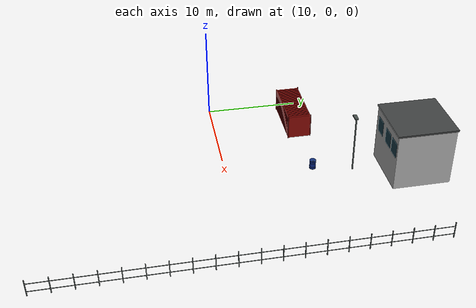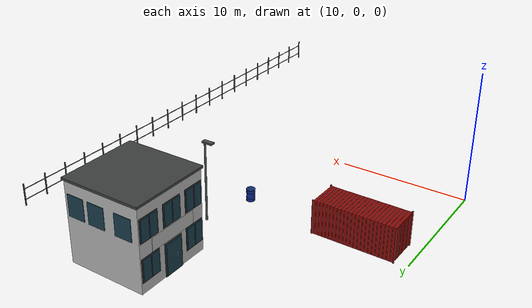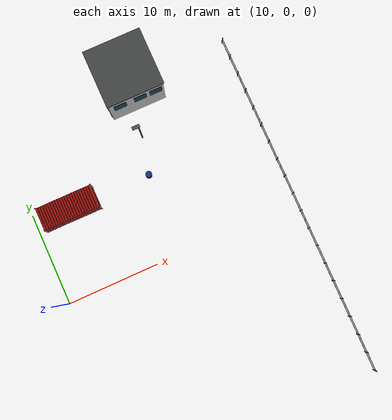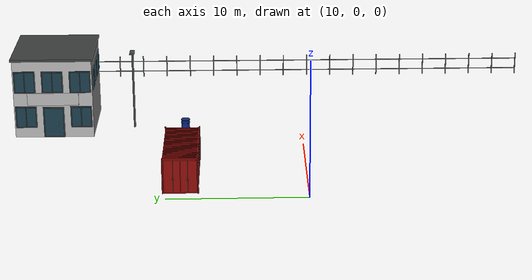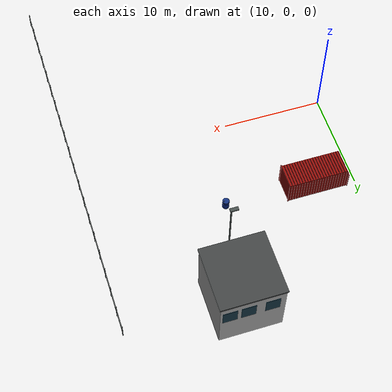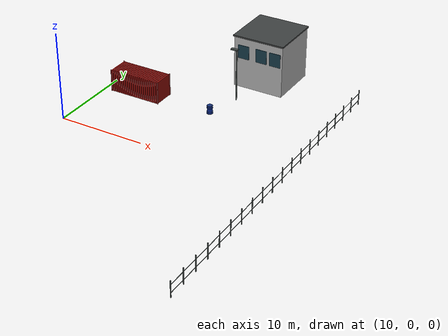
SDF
<sdf version="1.5">
 <world name="default">
  <include><uri>model://sun</uri></include>
  <model name="red_shipping_container">
   <static>true</static>
   <pose>14.0 9.0 0.003 0 0 0.0</pose>
   <link name="structure">
    <visual name="body">
     <pose>0 0 1.2955 0 0 0</pose>
     <geometry><box><size>6.058 2.438 2.591</size></box></geometry>
     <material>
      <ambient>0.56 0.045 0.028 1</ambient>
      <diffuse>0.56 0.045 0.028 1</diffuse>
      <specular>0.04 0.04 0.04 1</specular>
     </material>
    </visual>
    <collision name="body_collision">
     <pose>0 0 1.2955 0 0 0</pose>
     <geometry><box><size>6.058 2.438 2.591</size></box></geometry>
     <surface><friction><ode><mu>1.0</mu><mu2>1.0</mu2></ode></friction></surface>
    </collision>
    <visual name="wall_rib_0_-1">
     <pose>-2.8 -1.237 1.2955 0 0 0</pose>
     <geometry><box><size>0.055 0.038 2.39</size></box></geometry>
     <material>
      <ambient>0.39 0.025 0.018 1</ambient>
      <diffuse>0.39 0.025 0.018 1</diffuse>
      <specular>0.04 0.04 0.04 1</specular>
     </material>
    </visual>
    <visual name="wall_rib_0_1">
     <pose>-2.8 1.237 1.2955 0 0 0</pose>
     <geometry><box><size>0.055 0.038 2.39</size></box></geometry>
     <material>
      <ambient>0.39 0.025 0.018 1</ambient>
      <diffuse>0.39 0.025 0.018 1</diffuse>
      <specular>0.04 0.04 0.04 1</specular>
     </material>
    </visual>
    <visual name="roof_rib_0">
     <pose>-2.8 0 2.606 0 0 0</pose>
     <geometry><box><size>0.06 2.35 0.03</size></box></geometry>
     <material>
      <ambient>0.39 0.025 0.018 1</ambient>
      <diffuse>0.39 0.025 0.018 1</diffuse>
      <specular>0.04 0.04 0.04 1</specular>
     </material>
    </visual>
    <visual name="wall_rib_1_-1">
     <pose>-2.533333 -1.237 1.2955 0 0 0</pose>
     <geometry><box><size>0.055 0.038 2.39</size></box></geometry>
     <material>
      <ambient>0.39 0.025 0.018 1</ambient>
      <diffuse>0.39 0.025 0.018 1</diffuse>
      <specular>0.04 0.04 0.04 1</specular>
     </material>
    </visual>
    <visual name="wall_rib_1_1">
     <pose>-2.533333 1.237 1.2955 0 0 0</pose>
     <geometry><box><size>0.055 0.038 2.39</size></box></geometry>
     <material>
      <ambient>0.39 0.025 0.018 1</ambient>
      <diffuse>0.39 0.025 0.018 1</diffuse>
      <specular>0.04 0.04 0.04 1</specular>
     </material>
    </visual>
    <visual name="roof_rib_1">
     <pose>-2.533333 0 2.606 0 0 0</pose>
     <geometry><box><size>0.06 2.35 0.03</size></box></geometry>
     <material>
      <ambient>0.39 0.025 0.018 1</ambient>
      <diffuse>0.39 0.025 0.018 1</diffuse>
      <specular>0.04 0.04 0.04 1</specular>
     </material>
    </visual>
    <visual name="wall_rib_2_-1">
     <pose>-2.266667 -1.237 1.2955 0 0 0</pose>
     <geometry><box><size>0.055 0.038 2.39</size></box></geometry>
     <material>
      <ambient>0.39 0.025 0.018 1</ambient>
      <diffuse>0.39 0.025 0.018 1</diffuse>
      <specular>0.04 0.04 0.04 1</specular>
     </material>
    </visual>
    <visual name="wall_rib_2_1">
     <pose>-2.266667 1.237 1.2955 0 0 0</pose>
     <geometry><box><size>0.055 0.038 2.39</size></box></geometry>
     <material>
      <ambient>0.39 0.025 0.018 1</ambient>
      <diffuse>0.39 0.025 0.018 1</diffuse>
      <specular>0.04 0.04 0.04 1</specular>
     </material>
    </visual>
    <visual name="roof_rib_2">
     <pose>-2.266667 0 2.606 0 0 0</pose>
     <geometry><box><size>0.06 2.35 0.03</size></box></geometry>
     <material>
      <ambient>0.39 0.025 0.018 1</ambient>
      <diffuse>0.39 0.025 0.018 1</diffuse>
      <specular>0.04 0.04 0.04 1</specular>
     </material>
    </visual>
    <visual name="wall_rib_3_-1">
     <pose>-2 -1.237 1.2955 0 0 0</pose>
     <geometry><box><size>0.055 0.038 2.39</size></box></geometry>
     <material>
      <ambient>0.39 0.025 0.018 1</ambient>
      <diffuse>0.39 0.025 0.018 1</diffuse>
      <specular>0.04 0.04 0.04 1</specular>
     </material>
    </visual>
    <visual name="wall_rib_3_1">
     <pose>-2 1.237 1.2955 0 0 0</pose>
     <geometry><box><size>0.055 0.038 2.39</size></box></geometry>
     <material>
      <ambient>0.39 0.025 0.018 1</ambient>
      <diffuse>0.39 0.025 0.018 1</diffuse>
      <specular>0.04 0.04 0.04 1</specular>
     </material>
    </visual>
    <visual name="roof_rib_3">
     <pose>-2 0 2.606 0 0 0</pose>
     <geometry><box><size>0.06 2.35 0.03</size></box></geometry>
     <material>
      <ambient>0.39 0.025 0.018 1</ambient>
      <diffuse>0.39 0.025 0.018 1</diffuse>
      <specular>0.04 0.04 0.04 1</specular>
     </material>
    </visual>
    <visual name="wall_rib_4_-1">
     <pose>-1.733333 -1.237 1.2955 0 0 0</pose>
     <geometry><box><size>0.055 0.038 2.39</size></box></geometry>
     <material>
      <ambient>0.39 0.025 0.018 1</ambient>
      <diffuse>0.39 0.025 0.018 1</diffuse>
      <specular>0.04 0.04 0.04 1</specular>
     </material>
    </visual>
    <visual name="wall_rib_4_1">
     <pose>-1.733333 1.237 1.2955 0 0 0</pose>
     <geometry><box><size>0.055 0.038 2.39</size></box></geometry>
     <material>
      <ambient>0.39 0.025 0.018 1</ambient>
      <diffuse>0.39 0.025 0.018 1</diffuse>
      <specular>0.04 0.04 0.04 1</specular>
     </material>
    </visual>
    <visual name="roof_rib_4">
     <pose>-1.733333 0 2.606 0 0 0</pose>
     <geometry><box><size>0.06 2.35 0.03</size></box></geometry>
     <material>
      <ambient>0.39 0.025 0.018 1</ambient>
      <diffuse>0.39 0.025 0.018 1</diffuse>
      <specular>0.04 0.04 0.04 1</specular>
     </material>
    </visual>
    <visual name="wall_rib_5_-1">
     <pose>-1.466667 -1.237 1.2955 0 0 0</pose>
     <geometry><box><size>0.055 0.038 2.39</size></box></geometry>
     <material>
      <ambient>0.39 0.025 0.018 1</ambient>
      <diffuse>0.39 0.025 0.018 1</diffuse>
      <specular>0.04 0.04 0.04 1</specular>
     </material>
    </visual>
    <visual name="wall_rib_5_1">
     <pose>-1.466667 1.237 1.2955 0 0 0</pose>
     <geometry><box><size>0.055 0.038 2.39</size></box></geometry>
     <material>
      <ambient>0.39 0.025 0.018 1</ambient>
      <diffuse>0.39 0.025 0.018 1</diffuse>
      <specular>0.04 0.04 0.04 1</specular>
     </material>
    </visual>
    <visual name="roof_rib_5">
     <pose>-1.466667 0 2.606 0 0 0</pose>
     <geometry><box><size>0.06 2.35 0.03</size></box></geometry>
     <material>
      <ambient>0.39 0.025 0.018 1</ambient>
      <diffuse>0.39 0.025 0.018 1</diffuse>
      <specular>0.04 0.04 0.04 1</specular>
     </material>
    </visual>
    <visual name="wall_rib_6_-1">
     <pose>-1.2 -1.237 1.2955 0 0 0</pose>
     <geometry><box><size>0.055 0.038 2.39</size></box></geometry>
     <material>
      <ambient>0.39 0.025 0.018 1</ambient>
      <diffuse>0.39 0.025 0.018 1</diffuse>
      <specular>0.04 0.04 0.04 1</specular>
     </material>
    </visual>
    <visual name="wall_rib_6_1">
     <pose>-1.2 1.237 1.2955 0 0 0</pose>
     <geometry><box><size>0.055 0.038 2.39</size></box></geometry>
     <material>
      <ambient>0.39 0.025 0.018 1</ambient>
      <diffuse>0.39 0.025 0.018 1</diffuse>
      <specular>0.04 0.04 0.04 1</specular>
     </material>
    </visual>
    <visual name="roof_rib_6">
     <pose>-1.2 0 2.606 0 0 0</pose>
     <geometry><box><size>0.06 2.35 0.03</size></box></geometry>
     <material>
      <ambient>0.39 0.025 0.018 1</ambient>
      <diffuse>0.39 0.025 0.018 1</diffuse>
      <specular>0.04 0.04 0.04 1</specular>
     </material>
    </visual>
    <visual name="wall_rib_7_-1">
     <pose>-0.9333333 -1.237 1.2955 0 0 0</pose>
     <geometry><box><size>0.055 0.038 2.39</size></box></geometry>
     <material>
      <ambient>0.39 0.025 0.018 1</ambient>
      <diffuse>0.39 0.025 0.018 1</diffuse>
      <specular>0.04 0.04 0.04 1</specular>
     </material>
    </visual>
    <visual name="wall_rib_7_1">
     <pose>-0.9333333 1.237 1.2955 0 0 0</pose>
     <geometry><box><size>0.055 0.038 2.39</size></box></geometry>
     <material>
      <ambient>0.39 0.025 0.018 1</ambient>
      <diffuse>0.39 0.025 0.018 1</diffuse>
      <specular>0.04 0.04 0.04 1</specular>
     </material>
    </visual>
    <visual name="roof_rib_7">
     <pose>-0.9333333 0 2.606 0 0 0</pose>
     <geometry><box><size>0.06 2.35 0.03</size></box></geometry>
     <material>
      <ambient>0.39 0.025 0.018 1</ambient>
      <diffuse>0.39 0.025 0.018 1</diffuse>
      <specular>0.04 0.04 0.04 1</specular>
     </material>
    </visual>
    <visual name="wall_rib_8_-1">
     <pose>-0.6666667 -1.237 1.2955 0 0 0</pose>
     <geometry><box><size>0.055 0.038 2.39</size></box></geometry>
     <material>
      <ambient>0.39 0.025 0.018 1</ambient>
      <diffuse>0.39 0.025 0.018 1</diffuse>
      <specular>0.04 0.04 0.04 1</specular>
     </material>
    </visual>
    <visual name="wall_rib_8_1">
     <pose>-0.6666667 1.237 1.2955 0 0 0</pose>
     <geometry><box><size>0.055 0.038 2.39</size></box></geometry>
     <material>
      <ambient>0.39 0.025 0.018 1</ambient>
      <diffuse>0.39 0.025 0.018 1</diffuse>
      <specular>0.04 0.04 0.04 1</specular>
     </material>
    </visual>
    <visual name="roof_rib_8">
     <pose>-0.6666667 0 2.606 0 0 0</pose>
     <geometry><box><size>0.06 2.35 0.03</size></box></geometry>
     <material>
      <ambient>0.39 0.025 0.018 1</ambient>
      <diffuse>0.39 0.025 0.018 1</diffuse>
      <specular>0.04 0.04 0.04 1</specular>
     </material>
    </visual>
    <visual name="wall_rib_9_-1">
     <pose>-0.4 -1.237 1.2955 0 0 0</pose>
     <geometry><box><size>0.055 0.038 2.39</size></box></geometry>
     <material>
      <ambient>0.39 0.025 0.018 1</ambient>
      <diffuse>0.39 0.025 0.018 1</diffuse>
      <specular>0.04 0.04 0.04 1</specular>
     </material>
    </visual>
    <visual name="wall_rib_9_1">
     <pose>-0.4 1.237 1.2955 0 0 0</pose>
     <geometry><box><size>0.055 0.038 2.39</size></box></geometry>
     <material>
      <ambient>0.39 0.025 0.018 1</ambient>
      <diffuse>0.39 0.025 0.018 1</diffuse>
      <specular>0.04 0.04 0.04 1</specular>
     </material>
    </visual>
    <visual name="roof_rib_9">
     <pose>-0.4 0 2.606 0 0 0</pose>
     <geometry><box><size>0.06 2.35 0.03</size></box></geometry>
     <material>
      <ambient>0.39 0.025 0.018 1</ambient>
      <diffuse>0.39 0.025 0.018 1</diffuse>
      <specular>0.04 0.04 0.04 1</specular>
     </material>
    </visual>
    <visual name="wall_rib_10_-1">
     <pose>-0.1333333 -1.237 1.2955 0 0 0</pose>
     <geometry><box><size>0.055 0.038 2.39</size></box></geometry>
     <material>
      <ambient>0.39 0.025 0.018 1</ambient>
      <diffuse>0.39 0.025 0.018 1</diffuse>
      <specular>0.04 0.04 0.04 1</specular>
     </material>
    </visual>
    <visual name="wall_rib_10_1">
     <pose>-0.1333333 1.237 1.2955 0 0 0</pose>
     <geometry><box><size>0.055 0.038 2.39</size></box></geometry>
     <material>
      <ambient>0.39 0.025 0.018 1</ambient>
      <diffuse>0.39 0.025 0.018 1</diffuse>
      <specular>0.04 0.04 0.04 1</specular>
     </material>
    </visual>
    <visual name="roof_rib_10">
     <pose>-0.1333333 0 2.606 0 0 0</pose>
     <geometry><box><size>0.06 2.35 0.03</size></box></geometry>
     <material>
      <ambient>0.39 0.025 0.018 1</ambient>
      <diffuse>0.39 0.025 0.018 1</diffuse>
      <specular>0.04 0.04 0.04 1</specular>
     </material>
    </visual>
    <visual name="wall_rib_11_-1">
     <pose>0.1333333 -1.237 1.2955 0 0 0</pose>
     <geometry><box><size>0.055 0.038 2.39</size></box></geometry>
     <material>
      <ambient>0.39 0.025 0.018 1</ambient>
      <diffuse>0.39 0.025 0.018 1</diffuse>
      <specular>0.04 0.04 0.04 1</specular>
     </material>
    </visual>
    <visual name="wall_rib_11_1">
     <pose>0.1333333 1.237 1.2955 0 0 0</pose>
     <geometry><box><size>0.055 0.038 2.39</size></box></geometry>
     <material>
      <ambient>0.39 0.025 0.018 1</ambient>
      <diffuse>0.39 0.025 0.018 1</diffuse>
      <specular>0.04 0.04 0.04 1</specular>
     </material>
    </visual>
    <visual name="roof_rib_11">
     <pose>0.1333333 0 2.606 0 0 0</pose>
     <geometry><box><size>0.06 2.35 0.03</size></box></geometry>
     <material>
      <ambient>0.39 0.025 0.018 1</ambient>
      <diffuse>0.39 0.025 0.018 1</diffuse>
      <specular>0.04 0.04 0.04 1</specular>
     </material>
    </visual>
    <visual name="wall_rib_12_-1">
     <pose>0.4 -1.237 1.2955 0 0 0</pose>
     <geometry><box><size>0.055 0.038 2.39</size></box></geometry>
     <material>
      <ambient>0.39 0.025 0.018 1</ambient>
      <diffuse>0.39 0.025 0.018 1</diffuse>
      <specular>0.04 0.04 0.04 1</specular>
     </material>
    </visual>
    <visual name="wall_rib_12_1">
     <pose>0.4 1.237 1.2955 0 0 0</pose>
     <geometry><box><size>0.055 0.038 2.39</size></box></geometry>
     <material>
      <ambient>0.39 0.025 0.018 1</ambient>
      <diffuse>0.39 0.025 0.018 1</diffuse>
      <specular>0.04 0.04 0.04 1</specular>
     </material>
    </visual>
    <visual name="roof_rib_12">
     <pose>0.4 0 2.606 0 0 0</pose>
     <geometry><box><size>0.06 2.35 0.03</size></box></geometry>
     <material>
      <ambient>0.39 0.025 0.018 1</ambient>
      <diffuse>0.39 0.025 0.018 1</diffuse>
      <specular>0.04 0.04 0.04 1</specular>
     </material>
    </visual>
    <visual name="wall_rib_13_-1">
     <pose>0.6666667 -1.237 1.2955 0 0 0</pose>
     <geometry><box><size>0.055 0.038 2.39</size></box></geometry>
     <material>
      <ambient>0.39 0.025 0.018 1</ambient>
      <diffuse>0.39 0.025 0.018 1</diffuse>
      <specular>0.04 0.04 0.04 1</specular>
     </material>
    </visual>
    <visual name="wall_rib_13_1">
     <pose>0.6666667 1.237 1.2955 0 0 0</pose>
     <geometry><box><size>0.055 0.038 2.39</size></box></geometry>
     <material>
      <ambient>0.39 0.025 0.018 1</ambient>
      <diffuse>0.39 0.025 0.018 1</diffuse>
      <specular>0.04 0.04 0.04 1</specular>
     </material>
    </visual>
    <visual name="roof_rib_13">
     <pose>0.6666667 0 2.606 0 0 0</pose>
     <geometry><box><size>0.06 2.35 0.03</size></box></geometry>
     <material>
      <ambient>0.39 0.025 0.018 1</ambient>
      <diffuse>0.39 0.025 0.018 1</diffuse>
      <specular>0.04 0.04 0.04 1</specular>
     </material>
    </visual>
    <visual name="wall_rib_14_-1">
     <pose>0.9333333 -1.237 1.2955 0 0 0</pose>
     <geometry><box><size>0.055 0.038 2.39</size></box></geometry>
     <material>
      <ambient>0.39 0.025 0.018 1</ambient>
      <diffuse>0.39 0.025 0.018 1</diffuse>
      <specular>0.04 0.04 0.04 1</specular>
     </material>
    </visual>
    <visual name="wall_rib_14_1">
     <pose>0.9333333 1.237 1.2955 0 0 0</pose>
     <geometry><box><size>0.055 0.038 2.39</size></box></geometry>
     <material>
      <ambient>0.39 0.025 0.018 1</ambient>
      <diffuse>0.39 0.025 0.018 1</diffuse>
      <specular>0.04 0.04 0.04 1</specular>
     </material>
    </visual>
    <visual name="roof_rib_14">
     <pose>0.9333333 0 2.606 0 0 0</pose>
     <geometry><box><size>0.06 2.35 0.03</size></box></geometry>
     <material>
      <ambient>0.39 0.025 0.018 1</ambient>
      <diffuse>0.39 0.025 0.018 1</diffuse>
      <specular>0.04 0.04 0.04 1</specular>
     </material>
    </visual>
    <visual name="wall_rib_15_-1">
     <pose>1.2 -1.237 1.2955 0 0 0</pose>
     <geometry><box><size>0.055 0.038 2.39</size></box></geometry>
     <material>
      <ambient>0.39 0.025 0.018 1</ambient>
      <diffuse>0.39 0.025 0.018 1</diffuse>
      <specular>0.04 0.04 0.04 1</specular>
     </material>
    </visual>
    <visual name="wall_rib_15_1">
     <pose>1.2 1.237 1.2955 0 0 0</pose>
     <geometry><box><size>0.055 0.038 2.39</size></box></geometry>
     <material>
      <ambient>0.39 0.025 0.018 1</ambient>
      <diffuse>0.39 0.025 0.018 1</diffuse>
      <specular>0.04 0.04 0.04 1</specular>
     </material>
    </visual>
    <visual name="roof_rib_15">
     <pose>1.2 0 2.606 0 0 0</pose>
     <geometry><box><size>0.06 2.35 0.03</size></box></geometry>
     <material>
      <ambient>0.39 0.025 0.018 1</ambient>
      <diffuse>0.39 0.025 0.018 1</diffuse>
      <specular>0.04 0.04 0.04 1</specular>
     </material>
    </visual>
    <visual name="wall_rib_16_-1">
     <pose>1.466667 -1.237 1.2955 0 0 0</pose>
     <geometry><box><size>0.055 0.038 2.39</size></box></geometry>
     <material>
      <ambient>0.39 0.025 0.018 1</ambient>
      <diffuse>0.39 0.025 0.018 1</diffuse>
      <specular>0.04 0.04 0.04 1</specular>
     </material>
    </visual>
    <visual name="wall_rib_16_1">
     <pose>1.466667 1.237 1.2955 0 0 0</pose>
     <geometry><box><size>0.055 0.038 2.39</size></box></geometry>
     <material>
      <ambient>0.39 0.025 0.018 1</ambient>
      <diffuse>0.39 0.025 0.018 1</diffuse>
      <specular>0.04 0.04 0.04 1</specular>
     </material>
    </visual>
    <visual name="roof_rib_16">
     <pose>1.466667 0 2.606 0 0 0</pose>
     <geometry><box><size>0.06 2.35 0.03</size></box></geometry>
     <material>
      <ambient>0.39 0.025 0.018 1</ambient>
      <diffuse>0.39 0.025 0.018 1</diffuse>
      <specular>0.04 0.04 0.04 1</specular>
     </material>
    </visual>
    <visual name="wall_rib_17_-1">
     <pose>1.733333 -1.237 1.2955 0 0 0</pose>
     <geometry><box><size>0.055 0.038 2.39</size></box></geometry>
     <material>
      <ambient>0.39 0.025 0.018 1</ambient>
      <diffuse>0.39 0.025 0.018 1</diffuse>
      <specular>0.04 0.04 0.04 1</specular>
     </material>
    </visual>
    <visual name="wall_rib_17_1">
     <pose>1.733333 1.237 1.2955 0 0 0</pose>
     <geometry><box><size>0.055 0.038 2.39</size></box></geometry>
     <material>
      <ambient>0.39 0.025 0.018 1</ambient>
      <diffuse>0.39 0.025 0.018 1</diffuse>
      <specular>0.04 0.04 0.04 1</specular>
     </material>
    </visual>
    <visual name="roof_rib_17">
     <pose>1.733333 0 2.606 0 0 0</pose>
     <geometry><box><size>0.06 2.35 0.03</size></box></geometry>
     <material>
      <ambient>0.39 0.025 0.018 1</ambient>
      <diffuse>0.39 0.025 0.018 1</diffuse>
      <specular>0.04 0.04 0.04 1</specular>
     </material>
    </visual>
    <visual name="wall_rib_18_-1">
     <pose>2 -1.237 1.2955 0 0 0</pose>
     <geometry><box><size>0.055 0.038 2.39</size></box></geometry>
     <material>
      <ambient>0.39 0.025 0.018 1</ambient>
      <diffuse>0.39 0.025 0.018 1</diffuse>
      <specular>0.04 0.04 0.04 1</specular>
     </material>
    </visual>
    <visual name="wall_rib_18_1">
     <pose>2 1.237 1.2955 0 0 0</pose>
     <geometry><box><size>0.055 0.038 2.39</size></box></geometry>
     <material>
      <ambient>0.39 0.025 0.018 1</ambient>
      <diffuse>0.39 0.025 0.018 1</diffuse>
      <specular>0.04 0.04 0.04 1</specular>
     </material>
    </visual>
    <visual name="roof_rib_18">
     <pose>2 0 2.606 0 0 0</pose>
     <geometry><box><size>0.06 2.35 0.03</size></box></geometry>
     <material>
      <ambient>0.39 0.025 0.018 1</ambient>
      <diffuse>0.39 0.025 0.018 1</diffuse>
      <specular>0.04 0.04 0.04 1</specular>
     </material>
    </visual>
    <visual name="wall_rib_19_-1">
     <pose>2.266667 -1.237 1.2955 0 0 0</pose>
     <geometry><box><size>0.055 0.038 2.39</size></box></geometry>
     <material>
      <ambient>0.39 0.025 0.018 1</ambient>
      <diffuse>0.39 0.025 0.018 1</diffuse>
      <specular>0.04 0.04 0.04 1</specular>
     </material>
    </visual>
    <visual name="wall_rib_19_1">
     <pose>2.266667 1.237 1.2955 0 0 0</pose>
     <geometry><box><size>0.055 0.038 2.39</size></box></geometry>
     <material>
      <ambient>0.39 0.025 0.018 1</ambient>
      <diffuse>0.39 0.025 0.018 1</diffuse>
      <specular>0.04 0.04 0.04 1</specular>
     </material>
    </visual>
    <visual name="roof_rib_19">
     <pose>2.266667 0 2.606 0 0 0</pose>
     <geometry><box><size>0.06 2.35 0.03</size></box></geometry>
     <material>
      <ambient>0.39 0.025 0.018 1</ambient>
      <diffuse>0.39 0.025 0.018 1</diffuse>
      <specular>0.04 0.04 0.04 1</specular>
     </material>
    </visual>
    <visual name="wall_rib_20_-1">
     <pose>2.533333 -1.237 1.2955 0 0 0</pose>
     <geometry><box><size>0.055 0.038 2.39</size></box></geometry>
     <material>
      <ambient>0.39 0.025 0.018 1</ambient>
      <diffuse>0.39 0.025 0.018 1</diffuse>
      <specular>0.04 0.04 0.04 1</specular>
     </material>
    </visual>
    <visual name="wall_rib_20_1">
     <pose>2.533333 1.237 1.2955 0 0 0</pose>
     <geometry><box><size>0.055 0.038 2.39</size></box></geometry>
     <material>
      <ambient>0.39 0.025 0.018 1</ambient>
      <diffuse>0.39 0.025 0.018 1</diffuse>
      <specular>0.04 0.04 0.04 1</specular>
     </material>
    </visual>
    <visual name="roof_rib_20">
     <pose>2.533333 0 2.606 0 0 0</pose>
     <geometry><box><size>0.06 2.35 0.03</size></box></geometry>
     <material>
      <ambient>0.39 0.025 0.018 1</ambient>
      <diffuse>0.39 0.025 0.018 1</diffuse>
      <specular>0.04 0.04 0.04 1</specular>
     </material>
    </visual>
    <visual name="wall_rib_21_-1">
     <pose>2.8 -1.237 1.2955 0 0 0</pose>
     <geometry><box><size>0.055 0.038 2.39</size></box></geometry>
     <material>
      <ambient>0.39 0.025 0.018 1</ambient>
      <diffuse>0.39 0.025 0.018 1</diffuse>
      <specular>0.04 0.04 0.04 1</specular>
     </material>
    </visual>
    <visual name="wall_rib_21_1">
     <pose>2.8 1.237 1.2955 0 0 0</pose>
     <geometry><box><size>0.055 0.038 2.39</size></box></geometry>
     <material>
      <ambient>0.39 0.025 0.018 1</ambient>
      <diffuse>0.39 0.025 0.018 1</diffuse>
      <specular>0.04 0.04 0.04 1</specular>
     </material>
    </visual>
    <visual name="roof_rib_21">
     <pose>2.8 0 2.606 0 0 0</pose>
     <geometry><box><size>0.06 2.35 0.03</size></box></geometry>
     <material>
      <ambient>0.39 0.025 0.018 1</ambient>
      <diffuse>0.39 0.025 0.018 1</diffuse>
      <specular>0.04 0.04 0.04 1</specular>
     </material>
    </visual>
    <visual name="corner_-3.055_-1.245">
     <pose>-3.055 -1.245 1.325 0 0 0</pose>
     <geometry><box><size>0.09 0.09 2.65</size></box></geometry>
     <material>
      <ambient>0.39 0.025 0.018 1</ambient>
      <diffuse>0.39 0.025 0.018 1</diffuse>
      <specular>0.04 0.04 0.04 1</specular>
     </material>
    </visual>
    <visual name="corner_-3.055_1.245">
     <pose>-3.055 1.245 1.325 0 0 0</pose>
     <geometry><box><size>0.09 0.09 2.65</size></box></geometry>
     <material>
      <ambient>0.39 0.025 0.018 1</ambient>
      <diffuse>0.39 0.025 0.018 1</diffuse>
      <specular>0.04 0.04 0.04 1</specular>
     </material>
    </visual>
    <visual name="corner_3.055_-1.245">
     <pose>3.055 -1.245 1.325 0 0 0</pose>
     <geometry><box><size>0.09 0.09 2.65</size></box></geometry>
     <material>
      <ambient>0.39 0.025 0.018 1</ambient>
      <diffuse>0.39 0.025 0.018 1</diffuse>
      <specular>0.04 0.04 0.04 1</specular>
     </material>
    </visual>
    <visual name="corner_3.055_1.245">
     <pose>3.055 1.245 1.325 0 0 0</pose>
     <geometry><box><size>0.09 0.09 2.65</size></box></geometry>
     <material>
      <ambient>0.39 0.025 0.018 1</ambient>
      <diffuse>0.39 0.025 0.018 1</diffuse>
      <specular>0.04 0.04 0.04 1</specular>
     </material>
    </visual>
    <visual name="end_door_-1">
     <pose>-3.043 -0.593 1.29 0 0 0</pose>
     <geometry><box><size>0.025 1.14 2.4</size></box></geometry>
     <material>
      <ambient>0.56 0.045 0.028 1</ambient>
      <diffuse>0.56 0.045 0.028 1</diffuse>
      <specular>0.04 0.04 0.04 1</specular>
     </material>
    </visual>
    <visual name="lock_bar_-1">
     <pose>-3.07 -0.52 1.29 0 0 0</pose>
     <geometry><cylinder><radius>0.018</radius><length>2.32</length></cylinder></geometry>
     <material>
      <ambient>0.34 0.35 0.35 1</ambient>
      <diffuse>0.34 0.35 0.35 1</diffuse>
      <specular>0.04 0.04 0.04 1</specular>
     </material>
    </visual>
    <visual name="lock_handle_-1">
     <pose>-3.095 -0.52 1.1 0 0 0</pose>
     <geometry><box><size>0.045 0.21 0.025</size></box></geometry>
     <material>
      <ambient>0.34 0.35 0.35 1</ambient>
      <diffuse>0.34 0.35 0.35 1</diffuse>
      <specular>0.04 0.04 0.04 1</specular>
     </material>
    </visual>
    <visual name="end_door_1">
     <pose>-3.043 0.593 1.29 0 0 0</pose>
     <geometry><box><size>0.025 1.14 2.4</size></box></geometry>
     <material>
      <ambient>0.56 0.045 0.028 1</ambient>
      <diffuse>0.56 0.045 0.028 1</diffuse>
      <specular>0.04 0.04 0.04 1</specular>
     </material>
    </visual>
    <visual name="lock_bar_1">
     <pose>-3.07 0.52 1.29 0 0 0</pose>
     <geometry><cylinder><radius>0.018</radius><length>2.32</length></cylinder></geometry>
     <material>
      <ambient>0.34 0.35 0.35 1</ambient>
      <diffuse>0.34 0.35 0.35 1</diffuse>
      <specular>0.04 0.04 0.04 1</specular>
     </material>
    </visual>
    <visual name="lock_handle_1">
     <pose>-3.095 0.52 1.1 0 0 0</pose>
     <geometry><box><size>0.045 0.21 0.025</size></box></geometry>
     <material>
      <ambient>0.34 0.35 0.35 1</ambient>
      <diffuse>0.34 0.35 0.35 1</diffuse>
      <specular>0.04 0.04 0.04 1</specular>
     </material>
    </visual>
   </link>
  </model>
  <model name="blue_drum">
   <static>true</static>
   <pose>23.0 9.0 0.003 0 0 0.0</pose>
   <link name="structure">
    <visual name="drum_body">
     <pose>0 0 0.48 0 0 0</pose>
     <geometry><cylinder><radius>0.32</radius><length>0.94</length></cylinder></geometry>
     <material>
      <ambient>0.03 0.15 0.53 1</ambient>
      <diffuse>0.03 0.15 0.53 1</diffuse>
      <specular>0.04 0.04 0.04 1</specular>
     </material>
    </visual>
    <collision name="drum_body_collision">
     <pose>0 0 0.48 0 0 0</pose>
     <geometry><cylinder><radius>0.32</radius><length>0.94</length></cylinder></geometry>
     <surface><friction><ode><mu>1.0</mu><mu2>1.0</mu2></ode></friction></surface>
    </collision>
    <visual name="drum_ring_0">
     <pose>0 0 0.04 0 0 0</pose>
     <geometry><cylinder><radius>0.342</radius><length>0.026</length></cylinder></geometry>
     <material>
      <ambient>0.1 0.19 0.4 1</ambient>
      <diffuse>0.1 0.19 0.4 1</diffuse>
      <specular>0.04 0.04 0.04 1</specular>
     </material>
    </visual>
    <visual name="drum_ring_1">
     <pose>0 0 0.27 0 0 0</pose>
     <geometry><cylinder><radius>0.342</radius><length>0.026</length></cylinder></geometry>
     <material>
      <ambient>0.1 0.19 0.4 1</ambient>
      <diffuse>0.1 0.19 0.4 1</diffuse>
      <specular>0.04 0.04 0.04 1</specular>
     </material>
    </visual>
    <visual name="drum_ring_2">
     <pose>0 0 0.72 0 0 0</pose>
     <geometry><cylinder><radius>0.342</radius><length>0.026</length></cylinder></geometry>
     <material>
      <ambient>0.1 0.19 0.4 1</ambient>
      <diffuse>0.1 0.19 0.4 1</diffuse>
      <specular>0.04 0.04 0.04 1</specular>
     </material>
    </visual>
    <visual name="drum_ring_3">
     <pose>0 0 0.94 0 0 0</pose>
     <geometry><cylinder><radius>0.342</radius><length>0.026</length></cylinder></geometry>
     <material>
      <ambient>0.1 0.19 0.4 1</ambient>
      <diffuse>0.1 0.19 0.4 1</diffuse>
      <specular>0.04 0.04 0.04 1</specular>
     </material>
    </visual>
    <visual name="drum_lid">
     <pose>0 0 0.971 0 0 0</pose>
     <geometry><cylinder><radius>0.32</radius><length>0.035</length></cylinder></geometry>
     <material>
      <ambient>0.07 0.18 0.46 1</ambient>
      <diffuse>0.07 0.18 0.46 1</diffuse>
      <specular>0.04 0.04 0.04 1</specular>
     </material>
    </visual>
    <visual name="lid_bung">
     <pose>0.17 0 0.997 0 0 0</pose>
     <geometry><cylinder><radius>0.043</radius><length>0.018</length></cylinder></geometry>
     <material>
      <ambient>0.39 0.4 0.4 1</ambient>
      <diffuse>0.39 0.4 0.4 1</diffuse>
      <specular>0.04 0.04 0.04 1</specular>
     </material>
    </visual>
   </link>
  </model>
  <model name="park_office">
   <static>true</static>
   <pose>25.0 19.0 0.003 0 0 0.0</pose>
   <link name="structure">
    <visual name="office_shell">
     <pose>0 0 3.05 0 0 0</pose>
     <geometry><box><size>6 6 6.1</size></box></geometry>
     <material>
      <script>
       <uri>file:///home/fxxk/px4_agent/scene/materials/scripts</uri>
       <uri>file:///home/fxxk/px4_agent/scene/materials/textures</uri>
       <name>Yard/concrete</name>
      </script>
     </material>
    </visual>
    <collision name="office_shell_collision">
     <pose>0 0 3.05 0 0 0</pose>
     <geometry><box><size>6 6 6.1</size></box></geometry>
     <surface><friction><ode><mu>1.0</mu><mu2>1.0</mu2></ode></friction></surface>
    </collision>
    <visual name="office_roof">
     <pose>0 0 6.19 0 0 0</pose>
     <geometry><box><size>6.2 6.2 0.18</size></box></geometry>
     <material>
      <ambient>0.24 0.25 0.25 1</ambient>
      <diffuse>0.24 0.25 0.25 1</diffuse>
      <specular>0.04 0.04 0.04 1</specular>
     </material>
    </visual>
    <collision name="office_roof_collision">
     <pose>0 0 6.19 0 0 0</pose>
     <geometry><box><size>6.2 6.2 0.18</size></box></geometry>
     <surface><friction><ode><mu>1.0</mu><mu2>1.0</mu2></ode></friction></surface>
    </collision>
    <visual name="front_frame_0_0">
     <pose>-3.025 -2.1 1.65 0 0 0</pose>
     <geometry><box><size>0.045 1.62 1.72</size></box></geometry>
     <material>
      <ambient>0.18 0.2 0.21 1</ambient>
      <diffuse>0.18 0.2 0.21 1</diffuse>
      <specular>0.04 0.04 0.04 1</specular>
     </material>
    </visual>
    <visual name="front_glass_0_0">
     <pose>-3.056 -2.1 1.65 0 0 0</pose>
     <geometry><box><size>0.05 1.44 1.54</size></box></geometry>
     <material>
      <ambient>0.1 0.24 0.3 1</ambient>
      <diffuse>0.1 0.24 0.3 1</diffuse>
      <specular>0.04 0.04 0.04 1</specular>
     </material>
    </visual>
    <visual name="window_mullion_0_0">
     <pose>-3.086 -2.1 1.65 0 0 0</pose>
     <geometry><box><size>0.055 0.06 1.58</size></box></geometry>
     <material>
      <ambient>0.18 0.2 0.21 1</ambient>
      <diffuse>0.18 0.2 0.21 1</diffuse>
      <specular>0.04 0.04 0.04 1</specular>
     </material>
    </visual>
    <visual name="front_frame_0_2">
     <pose>-3.025 2.1 1.65 0 0 0</pose>
     <geometry><box><size>0.045 1.62 1.72</size></box></geometry>
     <material>
      <ambient>0.18 0.2 0.21 1</ambient>
      <diffuse>0.18 0.2 0.21 1</diffuse>
      <specular>0.04 0.04 0.04 1</specular>
     </material>
    </visual>
    <visual name="front_glass_0_2">
     <pose>-3.056 2.1 1.65 0 0 0</pose>
     <geometry><box><size>0.05 1.44 1.54</size></box></geometry>
     <material>
      <ambient>0.1 0.24 0.3 1</ambient>
      <diffuse>0.1 0.24 0.3 1</diffuse>
      <specular>0.04 0.04 0.04 1</specular>
     </material>
    </visual>
    <visual name="window_mullion_0_2">
     <pose>-3.086 2.1 1.65 0 0 0</pose>
     <geometry><box><size>0.055 0.06 1.58</size></box></geometry>
     <material>
      <ambient>0.18 0.2 0.21 1</ambient>
      <diffuse>0.18 0.2 0.21 1</diffuse>
      <specular>0.04 0.04 0.04 1</specular>
     </material>
    </visual>
    <visual name="front_frame_1_0">
     <pose>-3.025 -2.1 4.45 0 0 0</pose>
     <geometry><box><size>0.045 1.62 1.72</size></box></geometry>
     <material>
      <ambient>0.18 0.2 0.21 1</ambient>
      <diffuse>0.18 0.2 0.21 1</diffuse>
      <specular>0.04 0.04 0.04 1</specular>
     </material>
    </visual>
    <visual name="front_glass_1_0">
     <pose>-3.056 -2.1 4.45 0 0 0</pose>
     <geometry><box><size>0.05 1.44 1.54</size></box></geometry>
     <material>
      <ambient>0.1 0.24 0.3 1</ambient>
      <diffuse>0.1 0.24 0.3 1</diffuse>
      <specular>0.04 0.04 0.04 1</specular>
     </material>
    </visual>
    <visual name="window_mullion_1_0">
     <pose>-3.086 -2.1 4.45 0 0 0</pose>
     <geometry><box><size>0.055 0.06 1.58</size></box></geometry>
     <material>
      <ambient>0.18 0.2 0.21 1</ambient>
      <diffuse>0.18 0.2 0.21 1</diffuse>
      <specular>0.04 0.04 0.04 1</specular>
     </material>
    </visual>
    <visual name="front_frame_1_1">
     <pose>-3.025 0 4.45 0 0 0</pose>
     <geometry><box><size>0.045 1.62 1.72</size></box></geometry>
     <material>
      <ambient>0.18 0.2 0.21 1</ambient>
      <diffuse>0.18 0.2 0.21 1</diffuse>
      <specular>0.04 0.04 0.04 1</specular>
     </material>
    </visual>
    <visual name="front_glass_1_1">
     <pose>-3.056 0 4.45 0 0 0</pose>
     <geometry><box><size>0.05 1.44 1.54</size></box></geometry>
     <material>
      <ambient>0.1 0.24 0.3 1</ambient>
      <diffuse>0.1 0.24 0.3 1</diffuse>
      <specular>0.04 0.04 0.04 1</specular>
     </material>
    </visual>
    <visual name="window_mullion_1_1">
     <pose>-3.086 0 4.45 0 0 0</pose>
     <geometry><box><size>0.055 0.06 1.58</size></box></geometry>
     <material>
      <ambient>0.18 0.2 0.21 1</ambient>
      <diffuse>0.18 0.2 0.21 1</diffuse>
      <specular>0.04 0.04 0.04 1</specular>
     </material>
    </visual>
    <visual name="front_frame_1_2">
     <pose>-3.025 2.1 4.45 0 0 0</pose>
     <geometry><box><size>0.045 1.62 1.72</size></box></geometry>
     <material>
      <ambient>0.18 0.2 0.21 1</ambient>
      <diffuse>0.18 0.2 0.21 1</diffuse>
      <specular>0.04 0.04 0.04 1</specular>
     </material>
    </visual>
    <visual name="front_glass_1_2">
     <pose>-3.056 2.1 4.45 0 0 0</pose>
     <geometry><box><size>0.05 1.44 1.54</size></box></geometry>
     <material>
      <ambient>0.1 0.24 0.3 1</ambient>
      <diffuse>0.1 0.24 0.3 1</diffuse>
      <specular>0.04 0.04 0.04 1</specular>
     </material>
    </visual>
    <visual name="window_mullion_1_2">
     <pose>-3.086 2.1 4.45 0 0 0</pose>
     <geometry><box><size>0.055 0.06 1.58</size></box></geometry>
     <material>
      <ambient>0.18 0.2 0.21 1</ambient>
      <diffuse>0.18 0.2 0.21 1</diffuse>
      <specular>0.04 0.04 0.04 1</specular>
     </material>
    </visual>
    <visual name="entrance_frame">
     <pose>-3.036 0 1.225 0 0 0</pose>
     <geometry><box><size>0.06 1.6 2.45</size></box></geometry>
     <material>
      <ambient>0.18 0.2 0.21 1</ambient>
      <diffuse>0.18 0.2 0.21 1</diffuse>
      <specular>0.04 0.04 0.04 1</specular>
     </material>
    </visual>
    <visual name="glass_entrance">
     <pose>-3.076 0 1.225 0 0 0</pose>
     <geometry><box><size>0.065 1.4 2.25</size></box></geometry>
     <material>
      <ambient>0.1 0.24 0.3 1</ambient>
      <diffuse>0.1 0.24 0.3 1</diffuse>
      <specular>0.04 0.04 0.04 1</specular>
     </material>
    </visual>
    <visual name="door_handle">
     <pose>-3.13 -0.32 1.15 0 0 0</pose>
     <geometry><box><size>0.07 0.028 0.4</size></box></geometry>
     <material>
      <ambient>0.63 0.65 0.65 1</ambient>
      <diffuse>0.63 0.65 0.65 1</diffuse>
      <specular>0.04 0.04 0.04 1</specular>
     </material>
    </visual>
    <visual name="office_name">
     <pose>-3.07 0 3.1 0 0 0</pose>
     <geometry><box><size>0.04 3.9 0.98</size></box></geometry>
     <material>
      <script>
       <uri>file:///home/fxxk/px4_agent/scene/materials/scripts</uri>
       <uri>file:///home/fxxk/px4_agent/scene/materials/textures</uri>
       <name>Yard/office_sign</name>
      </script>
     </material>
    </visual>
    <visual name="side_window_-1_0">
     <pose>-1.8 -3.029 4.4 0 0 0</pose>
     <geometry><box><size>1.35 0.045 1.6</size></box></geometry>
     <material>
      <ambient>0.1 0.24 0.3 1</ambient>
      <diffuse>0.1 0.24 0.3 1</diffuse>
      <specular>0.04 0.04 0.04 1</specular>
     </material>
    </visual>
    <visual name="side_window_-1_1">
     <pose>0.4 -3.029 4.4 0 0 0</pose>
     <geometry><box><size>1.35 0.045 1.6</size></box></geometry>
     <material>
      <ambient>0.1 0.24 0.3 1</ambient>
      <diffuse>0.1 0.24 0.3 1</diffuse>
      <specular>0.04 0.04 0.04 1</specular>
     </material>
    </visual>
    <visual name="side_window_-1_2">
     <pose>2.1 -3.029 4.4 0 0 0</pose>
     <geometry><box><size>1.35 0.045 1.6</size></box></geometry>
     <material>
      <ambient>0.1 0.24 0.3 1</ambient>
      <diffuse>0.1 0.24 0.3 1</diffuse>
      <specular>0.04 0.04 0.04 1</specular>
     </material>
    </visual>
    <visual name="side_window_1_0">
     <pose>-1.8 3.029 4.4 0 0 0</pose>
     <geometry><box><size>1.35 0.045 1.6</size></box></geometry>
     <material>
      <ambient>0.1 0.24 0.3 1</ambient>
      <diffuse>0.1 0.24 0.3 1</diffuse>
      <specular>0.04 0.04 0.04 1</specular>
     </material>
    </visual>
    <visual name="side_window_1_1">
     <pose>0.4 3.029 4.4 0 0 0</pose>
     <geometry><box><size>1.35 0.045 1.6</size></box></geometry>
     <material>
      <ambient>0.1 0.24 0.3 1</ambient>
      <diffuse>0.1 0.24 0.3 1</diffuse>
      <specular>0.04 0.04 0.04 1</specular>
     </material>
    </visual>
    <visual name="side_window_1_2">
     <pose>2.1 3.029 4.4 0 0 0</pose>
     <geometry><box><size>1.35 0.045 1.6</size></box></geometry>
     <material>
      <ambient>0.1 0.24 0.3 1</ambient>
      <diffuse>0.1 0.24 0.3 1</diffuse>
      <specular>0.04 0.04 0.04 1</specular>
     </material>
    </visual>
   </link>
  </model>
  <model name="street_lamp_north">
   <static>true</static>
   <pose>24.0 13.0 0.003 0 0 0.0</pose>
   <link name="structure">
    <visual name="lamp_pole">
     <pose>0 0 3.075 0 0 0</pose>
     <geometry><cylinder><radius>0.075</radius><length>6.15</length></cylinder></geometry>
     <material>
      <ambient>0.26 0.29 0.28 1</ambient>
      <diffuse>0.26 0.29 0.28 1</diffuse>
      <specular>0.04 0.04 0.04 1</specular>
     </material>
    </visual>
    <collision name="lamp_pole_collision">
     <pose>0 0 3.075 0 0 0</pose>
     <geometry><cylinder><radius>0.075</radius><length>6.15</length></cylinder></geometry>
     <surface><friction><ode><mu>1.0</mu><mu2>1.0</mu2></ode></friction></surface>
    </collision>
    <visual name="lamp_head">
     <pose>-0.26 0 6.17 0 0 0</pose>
     <geometry><box><size>0.82 0.36 0.13</size></box></geometry>
     <material>
      <ambient>0.26 0.29 0.28 1</ambient>
      <diffuse>0.26 0.29 0.28 1</diffuse>
      <specular>0.04 0.04 0.04 1</specular>
     </material>
    </visual>
    <visual name="lamp_glass">
     <pose>-0.26 0 6.098 0 0 0</pose>
     <geometry><box><size>0.67 0.28 0.015</size></box></geometry>
     <cast_shadows>false</cast_shadows>
     <material>
      <ambient>0.82 0.82 0.66 1</ambient>
      <diffuse>0.82 0.82 0.66 1</diffuse>
      <specular>0.04 0.04 0.04 1</specular>
     </material>
    </visual>
   </link>
  </model>
  <model name="east_fence">
   <static>true</static>
   <pose>36.0 0.0 0.003 0 0 0.0</pose>
   <link name="structure">
    <collision name="fence_collision">
     <pose>0.0 0.0 0.9 0.0 0.0 0.0</pose>
     <geometry><box><size>0.12 38.0 1.8</size></box></geometry>
    </collision>
    <visual name="fence_post_0">
     <pose>0.0 -19.0 0.9 0.0 0.0 0.0</pose>
     <geometry><box><size>0.08 0.08 1.8</size></box></geometry>
     <material>
      <ambient>0.31 0.34 0.33 1</ambient>
      <diffuse>0.31 0.34 0.33 1</diffuse>
      <specular>0.04 0.04 0.04 1</specular>
     </material>
    </visual>
    <visual name="fence_post_1">
     <pose>0.0 -17.0 0.9 0.0 0.0 0.0</pose>
     <geometry><box><size>0.08 0.08 1.8</size></box></geometry>
     <material>
      <ambient>0.31 0.34 0.33 1</ambient>
      <diffuse>0.31 0.34 0.33 1</diffuse>
      <specular>0.04 0.04 0.04 1</specular>
     </material>
    </visual>
    <visual name="fence_post_2">
     <pose>0.0 -15.0 0.9 0.0 0.0 0.0</pose>
     <geometry><box><size>0.08 0.08 1.8</size></box></geometry>
     <material>
      <ambient>0.31 0.34 0.33 1</ambient>
      <diffuse>0.31 0.34 0.33 1</diffuse>
      <specular>0.04 0.04 0.04 1</specular>
     </material>
    </visual>
    <visual name="fence_post_3">
     <pose>0.0 -13.0 0.9 0.0 0.0 0.0</pose>
     <geometry><box><size>0.08 0.08 1.8</size></box></geometry>
     <material>
      <ambient>0.31 0.34 0.33 1</ambient>
      <diffuse>0.31 0.34 0.33 1</diffuse>
      <specular>0.04 0.04 0.04 1</specular>
     </material>
    </visual>
    <visual name="fence_post_4">
     <pose>0.0 -11.0 0.9 0.0 0.0 0.0</pose>
     <geometry><box><size>0.08 0.08 1.8</size></box></geometry>
     <material>
      <ambient>0.31 0.34 0.33 1</ambient>
      <diffuse>0.31 0.34 0.33 1</diffuse>
      <specular>0.04 0.04 0.04 1</specular>
     </material>
    </visual>
    <visual name="fence_post_5">
     <pose>0.0 -9.0 0.9 0.0 0.0 0.0</pose>
     <geometry><box><size>0.08 0.08 1.8</size></box></geometry>
     <material>
      <ambient>0.31 0.34 0.33 1</ambient>
      <diffuse>0.31 0.34 0.33 1</diffuse>
      <specular>0.04 0.04 0.04 1</specular>
     </material>
    </visual>
    <visual name="fence_post_6">
     <pose>0.0 -7.0 0.9 0.0 0.0 0.0</pose>
     <geometry><box><size>0.08 0.08 1.8</size></box></geometry>
     <material>
      <ambient>0.31 0.34 0.33 1</ambient>
      <diffuse>0.31 0.34 0.33 1</diffuse>
      <specular>0.04 0.04 0.04 1</specular>
     </material>
    </visual>
    <visual name="fence_post_7">
     <pose>0.0 -5.0 0.9 0.0 0.0 0.0</pose>
     <geometry><box><size>0.08 0.08 1.8</size></box></geometry>
     <material>
      <ambient>0.31 0.34 0.33 1</ambient>
      <diffuse>0.31 0.34 0.33 1</diffuse>
      <specular>0.04 0.04 0.04 1</specular>
     </material>
    </visual>
    <visual name="fence_post_8">
     <pose>0.0 -3.0 0.9 0.0 0.0 0.0</pose>
     <geometry><box><size>0.08 0.08 1.8</size></box></geometry>
     <material>
      <ambient>0.31 0.34 0.33 1</ambient>
      <diffuse>0.31 0.34 0.33 1</diffuse>
      <specular>0.04 0.04 0.04 1</specular>
     </material>
    </visual>
    <visual name="fence_post_9">
     <pose>0.0 -1.0 0.9 0.0 0.0 0.0</pose>
     <geometry><box><size>0.08 0.08 1.8</size></box></geometry>
     <material>
      <ambient>0.31 0.34 0.33 1</ambient>
      <diffuse>0.31 0.34 0.33 1</diffuse>
      <specular>0.04 0.04 0.04 1</specular>
     </material>
    </visual>
    <visual name="fence_post_10">
     <pose>0.0 1.0 0.9 0.0 0.0 0.0</pose>
     <geometry><box><size>0.08 0.08 1.8</size></box></geometry>
     <material>
      <ambient>0.31 0.34 0.33 1</ambient>
      <diffuse>0.31 0.34 0.33 1</diffuse>
      <specular>0.04 0.04 0.04 1</specular>
     </material>
    </visual>
    <visual name="fence_post_11">
     <pose>0.0 3.0 0.9 0.0 0.0 0.0</pose>
     <geometry><box><size>0.08 0.08 1.8</size></box></geometry>
     <material>
      <ambient>0.31 0.34 0.33 1</ambient>
      <diffuse>0.31 0.34 0.33 1</diffuse>
      <specular>0.04 0.04 0.04 1</specular>
     </material>
    </visual>
    <visual name="fence_post_12">
     <pose>0.0 5.0 0.9 0.0 0.0 0.0</pose>
     <geometry><box><size>0.08 0.08 1.8</size></box></geometry>
     <material>
      <ambient>0.31 0.34 0.33 1</ambient>
      <diffuse>0.31 0.34 0.33 1</diffuse>
      <specular>0.04 0.04 0.04 1</specular>
     </material>
    </visual>
    <visual name="fence_post_13">
     <pose>0.0 7.0 0.9 0.0 0.0 0.0</pose>
     <geometry><box><size>0.08 0.08 1.8</size></box></geometry>
     <material>
      <ambient>0.31 0.34 0.33 1</ambient>
      <diffuse>0.31 0.34 0.33 1</diffuse>
      <specular>0.04 0.04 0.04 1</specular>
     </material>
    </visual>
    <visual name="fence_post_14">
     <pose>0.0 9.0 0.9 0.0 0.0 0.0</pose>
     <geometry><box><size>0.08 0.08 1.8</size></box></geometry>
     <material>
      <ambient>0.31 0.34 0.33 1</ambient>
      <diffuse>0.31 0.34 0.33 1</diffuse>
      <specular>0.04 0.04 0.04 1</specular>
     </material>
    </visual>
    <visual name="fence_post_15">
     <pose>0.0 11.0 0.9 0.0 0.0 0.0</pose>
     <geometry><box><size>0.08 0.08 1.8</size></box></geometry>
     <material>
      <ambient>0.31 0.34 0.33 1</ambient>
      <diffuse>0.31 0.34 0.33 1</diffuse>
      <specular>0.04 0.04 0.04 1</specular>
     </material>
    </visual>
    <visual name="fence_post_16">
     <pose>0.0 13.0 0.9 0.0 0.0 0.0</pose>
     <geometry><box><size>0.08 0.08 1.8</size></box></geometry>
     <material>
      <ambient>0.31 0.34 0.33 1</ambient>
      <diffuse>0.31 0.34 0.33 1</diffuse>
      <specular>0.04 0.04 0.04 1</specular>
     </material>
    </visual>
    <visual name="fence_post_17">
     <pose>0.0 15.0 0.9 0.0 0.0 0.0</pose>
     <geometry><box><size>0.08 0.08 1.8</size></box></geometry>
     <material>
      <ambient>0.31 0.34 0.33 1</ambient>
      <diffuse>0.31 0.34 0.33 1</diffuse>
      <specular>0.04 0.04 0.04 1</specular>
     </material>
    </visual>
    <visual name="fence_post_18">
     <pose>0.0 17.0 0.9 0.0 0.0 0.0</pose>
     <geometry><box><size>0.08 0.08 1.8</size></box></geometry>
     <material>
      <ambient>0.31 0.34 0.33 1</ambient>
      <diffuse>0.31 0.34 0.33 1</diffuse>
      <specular>0.04 0.04 0.04 1</specular>
     </material>
    </visual>
    <visual name="fence_post_19">
     <pose>0.0 19.0 0.9 0.0 0.0 0.0</pose>
     <geometry><box><size>0.08 0.08 1.8</size></box></geometry>
     <material>
      <ambient>0.31 0.34 0.33 1</ambient>
      <diffuse>0.31 0.34 0.33 1</diffuse>
      <specular>0.04 0.04 0.04 1</specular>
     </material>
    </visual>
    <visual name="fence_rail_0">
     <pose>0.0 0.0 0.48 0.0 0.0 0.0</pose>
     <geometry><box><size>0.04 38.0 0.055</size></box></geometry>
     <material>
      <ambient>0.35 0.38 0.37 1</ambient>
      <diffuse>0.35 0.38 0.37 1</diffuse>
      <specular>0.04 0.04 0.04 1</specular>
     </material>
    </visual>
    <visual name="fence_rail_1">
     <pose>0.0 0.0 1.35 0.0 0.0 0.0</pose>
     <geometry><box><size>0.04 38.0 0.055</size></box></geometry>
     <material>
      <ambient>0.35 0.38 0.37 1</ambient>
      <diffuse>0.35 0.38 0.37 1</diffuse>
      <specular>0.04 0.04 0.04 1</specular>
     </material>
    </visual>
   </link>
  </model>
 </world>
</sdf>
